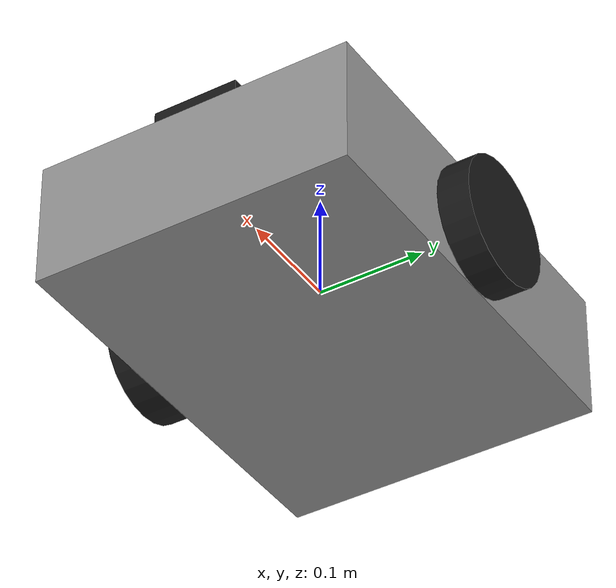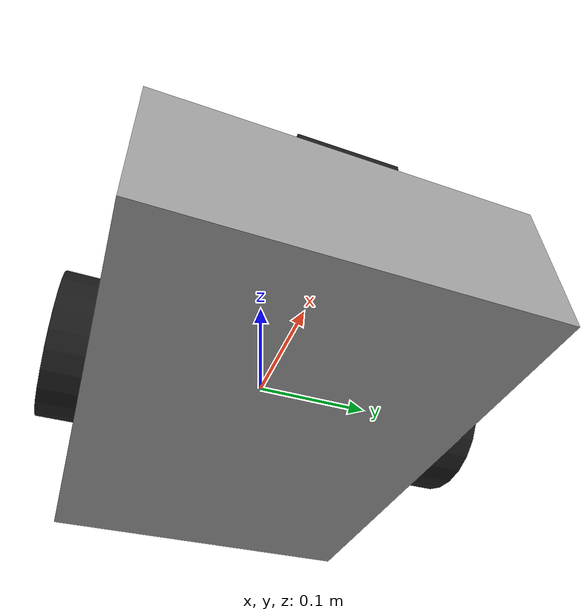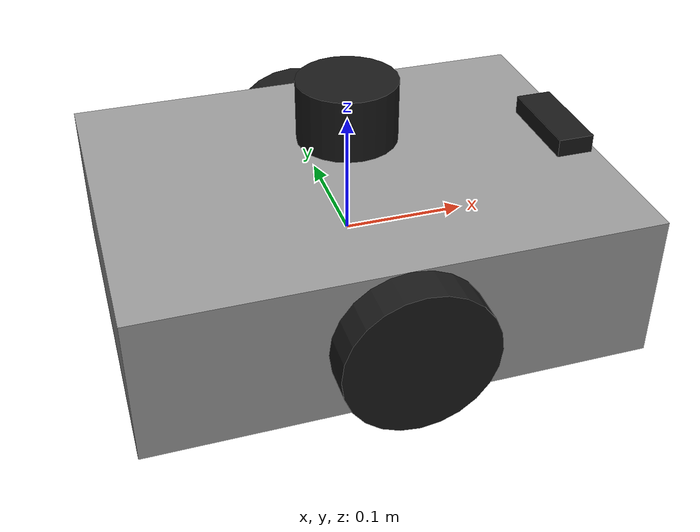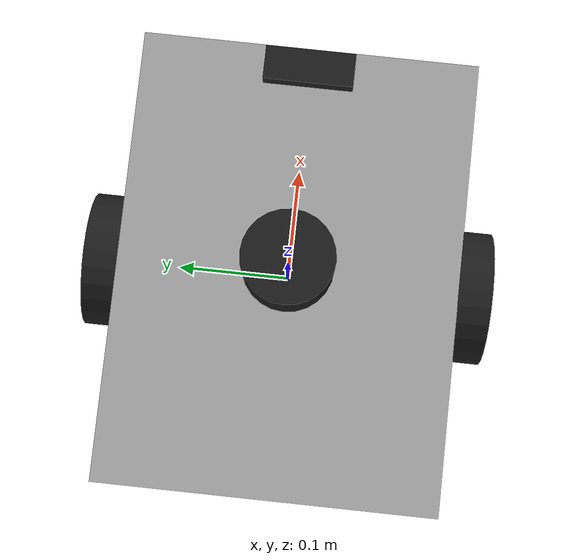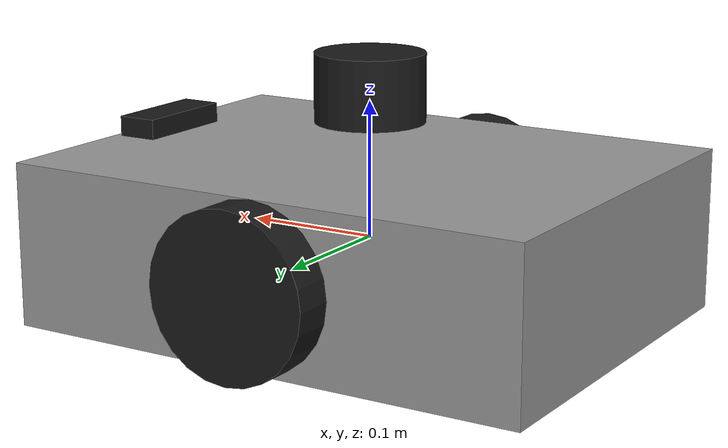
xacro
<?xml version="1.0"?>
<robot name="simple_robot" xmlns:xacro="http://www.ros.org/wiki/xacro">

  <!-- Teaching robot: differential-drive base + 2D lidar + camera -->

  <xacro:property name="base_length" value="0.40"/>
  <xacro:property name="base_width"  value="0.30"/>
  <xacro:property name="base_height" value="0.12"/>
  <xacro:property name="wheel_radius" value="0.06"/>
  <xacro:property name="wheel_width"  value="0.03"/>

  <material name="grey">
    <color rgba="0.6 0.6 0.6 1.0"/>
  </material>
  <material name="black">
    <color rgba="0.1 0.1 0.1 1.0"/>
  </material>

  <!-- Base link (main box) -->
  <link name="base_link">
    <visual>
      <geometry>
        <box size="${base_length} ${base_width} ${base_height}"/>
      </geometry>
      <material name="grey"/>
    </visual>
    <collision>
      <geometry>
        <box size="${base_length} ${base_width} ${base_height}"/>
      </geometry>
    </collision>
    <inertial>
      <mass value="5.0"/>
      <inertia ixx="0.05" ixy="0.0" ixz="0.0"
               iyy="0.08" iyz="0.0" izz="0.10"/>
    </inertial>
  </link>

  <!-- Drive wheels -->
  <xacro:macro name="wheel" params="name x_offset y_offset">
    <link name="${name}">
      <visual>
        <origin xyz="0 0 0" rpy="${pi/2} 0 0"/>
        <geometry>
          <cylinder radius="${wheel_radius}" length="${wheel_width}"/>
        </geometry>
        <material name="black"/>
      </visual>
      <collision>
        <origin xyz="0 0 0" rpy="${pi/2} 0 0"/>
        <geometry>
          <cylinder radius="${wheel_radius}" length="${wheel_width}"/>
        </geometry>
      </collision>
      <inertial>
        <mass value="0.5"/>
        <inertia ixx="0.001" ixy="0.0" ixz="0.0"
                 iyy="0.001" iyz="0.0" izz="0.001"/>
      </inertial>
    </link>
    <joint name="${name}_joint" type="continuous">
      <parent link="base_link"/>
      <child link="${name}"/>
      <origin xyz="${x_offset} ${y_offset} 0" rpy="0 0 0"/>
      <axis xyz="0 1 0"/>
    </joint>
  </xacro:macro>

  <xacro:wheel name="left_wheel"  x_offset="0.0"  y_offset="${base_width/2 + wheel_width/2}"/>
  <xacro:wheel name="right_wheel" x_offset="0.0"  y_offset="${-(base_width/2 + wheel_width/2)}"/>

  <!-- 2D lidar -->
  <link name="lidar_link">
    <visual>
      <geometry>
        <cylinder radius="0.04" length="0.05"/>
      </geometry>
      <material name="black"/>
    </visual>
    <collision>
      <geometry>
        <cylinder radius="0.04" length="0.05"/>
      </geometry>
    </collision>
    <inertial>
      <mass value="0.1"/>
      <inertia ixx="0.0001" ixy="0.0" ixz="0.0"
               iyy="0.0001" iyz="0.0" izz="0.0001"/>
    </inertial>
  </link>
  <joint name="lidar_joint" type="fixed">
    <parent link="base_link"/>
    <child link="lidar_link"/>
    <origin xyz="0.0 0.0 ${base_height/2 + 0.05}" rpy="0 0 0"/>
  </joint>

  <gazebo reference="lidar_link">
    <sensor name="lidar" type="gpu_lidar">
      <topic>scan</topic>
      <update_rate>10</update_rate>
      <lidar>
        <scan>
          <horizontal>
            <samples>360</samples>
            <min_angle>-3.14159</min_angle>
            <max_angle>3.14159</max_angle>
          </horizontal>
        </scan>
        <range>
          <min>0.12</min>
          <max>10.0</max>
        </range>
      </lidar>
    </sensor>
  </gazebo>

  <!-- Camera -->
  <link name="camera_link">
    <visual>
      <geometry>
        <box size="0.03 0.08 0.03"/>
      </geometry>
      <material name="black"/>
    </visual>
    <collision>
      <geometry>
        <box size="0.03 0.08 0.03"/>
      </geometry>
    </collision>
    <inertial>
      <mass value="0.1"/>
      <inertia ixx="0.0001" ixy="0.0" ixz="0.0"
               iyy="0.0001" iyz="0.0" izz="0.0001"/>
    </inertial>
  </link>
  <joint name="camera_joint" type="fixed">
    <parent link="base_link"/>
    <child link="camera_link"/>
    <origin xyz="${base_length/2 - 0.02} 0.0 ${base_height/2}" rpy="0 0 0"/>
  </joint>

  <gazebo reference="camera_link">
    <sensor name="camera" type="camera">
      <topic>camera/image_raw</topic>
      <update_rate>15</update_rate>
      <camera>
        <horizontal_fov>1.047</horizontal_fov>
        <image>
          <width>320</width>
          <height>240</height>
        </image>
        <clip>
          <near>0.05</near>
          <far>20.0</far>
        </clip>
      </camera>
    </sensor>
  </gazebo>

  <!-- Differential drive plugin (gz-sim) -->
  <gazebo>
    <plugin filename="gz-sim-diff-drive-system"
            name="gz::sim::systems::DiffDrive">
      <left_joint>left_wheel_joint</left_joint>
      <right_joint>right_wheel_joint</right_joint>
      <wheel_separation>${base_width + wheel_width}</wheel_separation>
      <wheel_radius>${wheel_radius}</wheel_radius>
      <topic>cmd_vel</topic>
      <odom_topic>odom</odom_topic>
      <tf_topic>tf</tf_topic>
      <frame_id>odom</frame_id>
      <child_frame_id>base_link</child_frame_id>
    </plugin>
  </gazebo>

  <gazebo>
    <plugin filename="gz-sim-joint-state-publisher-system"
            name="gz::sim::systems::JointStatePublisher">
    </plugin>
  </gazebo>

</robot>
